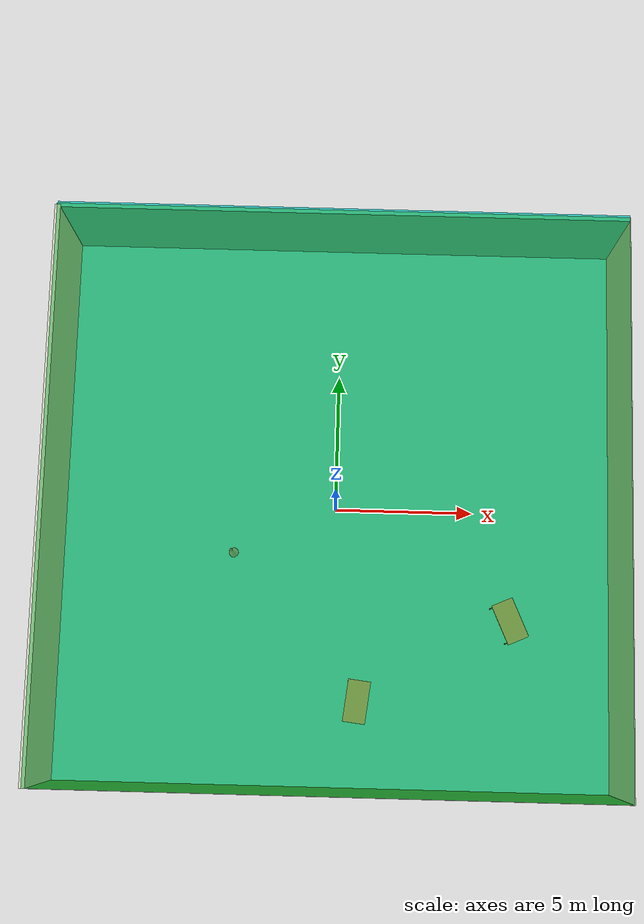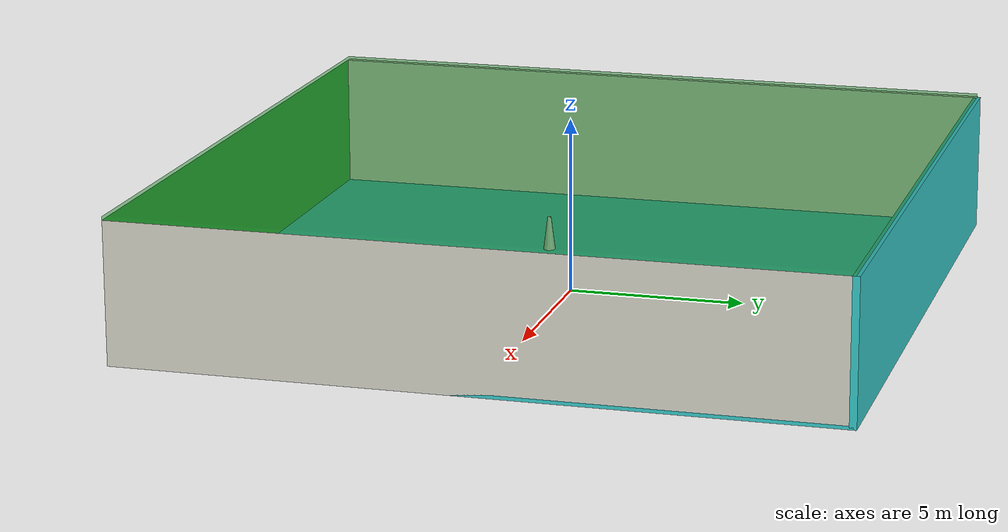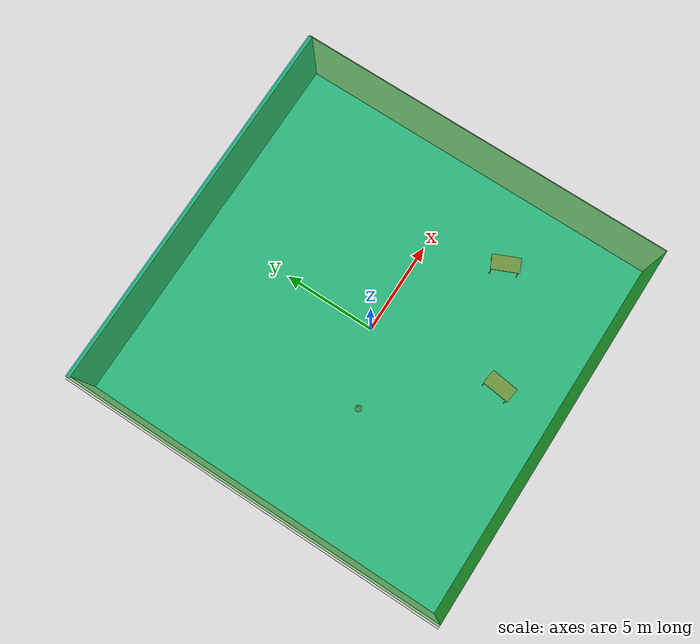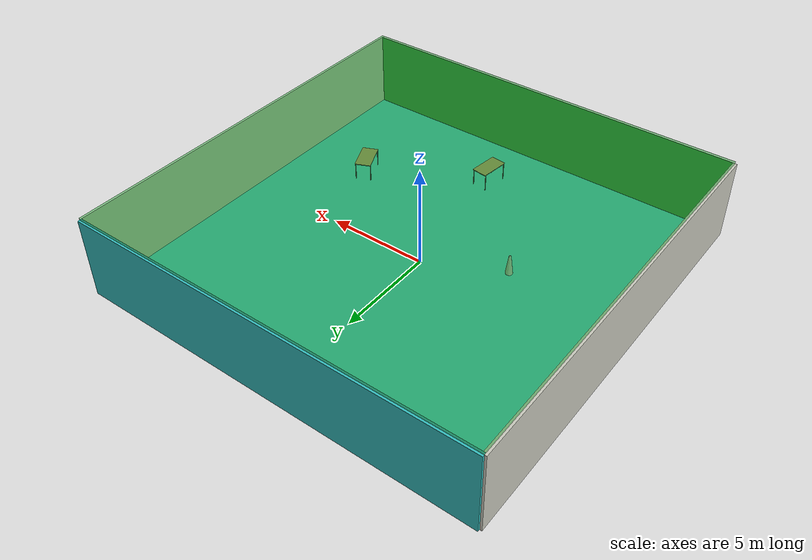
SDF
<sdf version="1.4">
 <world name="default">
  <physics type="ode">
   <max_step_size>0.001</max_step_size>
   <real_time_factor>1</real_time_factor>
   <real_time_update_rate>1000</real_time_update_rate>
   <gravity>0 0 -9.8</gravity>
  </physics>
  <scene><ambient>0.4 0.4 0.4 1</ambient><background>0.7 0.7 0.7 1</background><shadows>1</shadows></scene>
  <model name="Surrounding">
   <static>1</static>
   <link name="Ceiling">
    <collision name="Ceiling_Collision"><geometry><box><size>20 20 0.1</size></box></geometry></collision>
    <visual name="Ceiling_Visual">
     <geometry><box><size>20 20 0.1</size></box></geometry>
     <material>
      <script><uri>file://media/materials/scripts/gazebo.material</uri><name>Gazebo/GreenTransparent</name></script>
     </material>
    </visual>
    <pose>0 0 4.05 0 0 0</pose>
   </link>
   <link name="Wall_South">
    <collision name="Wall_South_Collision">
     <geometry><box><size>20 0 4</size></box></geometry>
     <pose>0 0 2 0 -0 0</pose>
    </collision>
    <visual name="Wall_South_Visual">
     <pose>0 0 2 0 -0 0</pose>
     <geometry><box><size>20 0 4</size></box></geometry>
     <material>
      <script><uri>file://media/materials/scripts/gazebo.material</uri><name>Gazebo/GreenGlow</name></script>
     </material>
    </visual>
    <velocity_decay><linear>0</linear><angular>0</angular></velocity_decay>
    <pose>0 -10 0 0 -0 0</pose>
   </link>
   <link name="Wall_East">
    <collision name="Wall_21_Collision">
     <geometry><box><size>20 0 4</size></box></geometry>
     <pose>0 0 2 0 -0 0</pose>
    </collision>
    <visual name="Wall_21_Visual">
     <pose>0 0 2 0 -0 0</pose>
     <geometry><box><size>20 0 4</size></box></geometry>
     <material>
      <script><uri>file://media/materials/scripts/gazebo.material</uri><name>Gazebo/PaintedWall</name></script>
     </material>
    </visual>
    <velocity_decay><linear>0</linear><angular>0</angular></velocity_decay>
    <pose>10 0 0 0 -0 1.5708</pose>
   </link>
   <link name="Wall_North">
    <collision name="Wall_22_Collision">
     <geometry><box><size>20 0.2 4</size></box></geometry>
     <pose>0 0 2 0 -0 0</pose>
    </collision>
    <visual name="Wall_22_Visual">
     <pose>0 0 2 0 -0 0</pose>
     <geometry><box><size>20 0.2 4</size></box></geometry>
     <material>
      <script>
       <uri>file://media/materials/scripts/gazebo.material</uri>
       <name>Gazebo/TurquoiseGlowOutline</name>
      </script>
     </material>
    </visual>
    <velocity_decay><linear>0</linear><angular>0</angular></velocity_decay>
    <pose>0 10 0 0 -0 0</pose>
   </link>
   <link name="Wall_West">
    <collision name="Wall_23_Collision">
     <geometry><box><size>20 0.2 4</size></box></geometry>
     <pose>0 0 2 0 -0 0</pose>
    </collision>
    <visual name="Wall_23_Visual">
     <pose>0 0 2 0 -0 0</pose>
     <geometry><box><size>20 0.2 4</size></box></geometry>
     <material>
      <script><uri>file://media/materials/scripts/gazebo.material</uri><name>Gazebo/PaintedWall</name></script>
     </material>
    </visual>
    <velocity_decay><linear>0</linear><angular>0</angular></velocity_decay>
    <pose>-10 0 0 0 0 -1.5708</pose>
   </link>
   <link name="Ground_link">
    <collision name="collision">
     <pose>0 0 .05 0 -0 0</pose>
     <geometry><box><size>20 20 0.1</size></box></geometry>
    </collision>
    <visual name="visual">
     <pose>0 0 .05 0 -0 0</pose>
     <geometry><box><size>20 20 0.1</size></box></geometry>
     <material>
      <script>
       <uri>file://media/materials/scripts/gazebo.material</uri>
       <name>Gazebo/TurquoiseGlowOutline</name>
      </script>
     </material>
    </visual>
   </link>
   <static>1</static>
  </model>
  <spherical_coordinates>
   <surface_model>EARTH_WGS84</surface_model>
   <latitude_deg>0</latitude_deg>
   <longitude_deg>0</longitude_deg>
   <elevation>0</elevation>
   <heading_deg>0</heading_deg>
  </spherical_coordinates>
  <light name="lightball_0" type="diffuse">
   <diffuse>0.8 0.8 0.8 1</diffuse>
   <specular>0.2 0.2 0.2 1</specular>
   <attenuation>
    <range>100</range>
    <constant>0.7</constant>
    <linear>0.01</linear>
    <quadratic>0.001</quadratic>
   </attenuation>
   <direction>-0.5 0.1 -0.9</direction>
   <pose>1.50615555132 3.52260470979 1.68412829257 0 0 0</pose>
  </light>
  <light name="lightball_1" type="diffuse">
   <diffuse>0.8 0.8 0.8 1</diffuse>
   <specular>0.2 0.2 0.2 1</specular>
   <attenuation>
    <range>100</range>
    <constant>0.7</constant>
    <linear>0.01</linear>
    <quadratic>0.001</quadratic>
   </attenuation>
   <direction>-0.5 0.1 -0.9</direction>
   <pose>-5.40286778825 -6.25783224132 2.96089623079 0 0 0</pose>
  </light>
  <light name="lightball_2" type="diffuse">
   <diffuse>0.8 0.8 0.8 1</diffuse>
   <specular>0.2 0.2 0.2 1</specular>
   <attenuation>
    <range>100</range>
    <constant>0.7</constant>
    <linear>0.01</linear>
    <quadratic>0.001</quadratic>
   </attenuation>
   <direction>-0.5 0.1 -0.9</direction>
   <pose>-7.20956594724 -4.04091457851 1.3014811948 0 0 0</pose>
  </light>
  <light name="lightball_3" type="diffuse">
   <diffuse>0.8 0.8 0.8 1</diffuse>
   <specular>0.2 0.2 0.2 1</specular>
   <attenuation>
    <range>100</range>
    <constant>0.7</constant>
    <linear>0.01</linear>
    <quadratic>0.001</quadratic>
   </attenuation>
   <direction>-0.5 0.1 -0.9</direction>
   <pose>7.52630793946 0.280256034622 2.37811125279 0 0 0</pose>
  </light>
  <light name="lightball_4" type="diffuse">
   <diffuse>0.8 0.8 0.8 1</diffuse>
   <specular>0.2 0.2 0.2 1</specular>
   <attenuation>
    <range>100</range>
    <constant>0.7</constant>
    <linear>0.01</linear>
    <quadratic>0.001</quadratic>
   </attenuation>
   <direction>-0.5 0.1 -0.9</direction>
   <pose>-3.2865883883 8.02145207805 2.15927832235 0 0 0</pose>
  </light>
  <include>
   <uri>model://construction_cone</uri>
   <pose>-3.69805695676 -1.6654316222 0 0 0 2.54804104195</pose>
  </include>
  <include><uri>model://table</uri><pose>0.912291052807 -6.93695463952 0 0 0 1.44616917162</pose></include>
  <include><uri>model://table</uri><pose>6.31519287715 -3.9642704956 0 0 0 1.98467031536</pose></include>
 </world>
</sdf>

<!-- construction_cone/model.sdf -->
<sdf version="1.5">
  <model name="Construction Cone">
    <link name="link">
      <collision name="collision">
        <geometry>
          <mesh>
            <scale>10 10 10</scale>
            <uri>file://isr-testbed/construction_cone/meshes/construction_cone.dae</uri>
          </mesh>
        </geometry>
      </collision>
      <visual name="visual">
        <geometry>
          <mesh>
            <scale>10 10 10</scale>
            <uri>file://isr-testbed/construction_cone/meshes/construction_cone.dae</uri>
          </mesh>
        </geometry>
      </visual>
    </link>
  </model>
</sdf>

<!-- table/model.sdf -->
<sdf version="1.5">
  <model name="table">
    <static>true</static>
    <link name="link">
      <collision name="surface">
        <pose>0 0 1.0 0 0 0</pose>
        <geometry>
          <box>
            <size>1.5 0.8 0.03</size>
          </box>
        </geometry>
        <surface>
          <friction>
            <ode>
              <mu>0.6</mu>
              <mu2>0.6</mu2>
            </ode>
          </friction>
        </surface>
      </collision>
      <visual name="visual1">
        <pose>0 0 1.0 0 0 0</pose>
        <geometry>
          <box>
            <size>1.5 0.8 0.03</size>
          </box>
        </geometry>
        <material>
          <script>
            <uri>model://media/materials/scripts/gazebo.material</uri>
            <name>Gazebo/Wood</name>
          </script>
        </material>
      </visual>
      <collision name="front_left_leg">
        <pose>0.68 0.38 0.5 0 0 0</pose>
        <geometry>
          <cylinder>
            <radius>0.02</radius>
            <length>1.0</length>
          </cylinder>
        </geometry>
      </collision>
      <visual name="front_left_leg">
        <pose>0.68 0.38 0.5 0 0 0</pose>
        <geometry>
          <cylinder>
            <radius>0.02</radius>
            <length>1.0</length>
          </cylinder>
        </geometry>
        <material>
          <script>
            <uri>model://media/materials/scripts/gazebo.material</uri>
            <name>Gazebo/Grey</name>
          </script>
        </material>
      </visual>
      <collision name="front_right_leg">
        <pose>0.68 -0.38 0.5 0 0 0</pose>
        <geometry>
          <cylinder>
            <radius>0.02</radius>
            <length>1.0</length>
          </cylinder>
        </geometry>
      </collision>
      <visual name="front_right_leg">
        <pose>0.68 -0.38 0.5 0 0 0</pose>
        <geometry>
          <cylinder>
            <radius>0.02</radius>
            <length>1.0</length>
          </cylinder>
        </geometry>
        <material>
          <script>
            <uri>model://media/materials/scripts/gazebo.material</uri>
            <name>Gazebo/Grey</name>
          </script>
        </material>
      </visual>
      <collision name="back_right_leg">
        <pose>-0.68 -0.38 0.5 0 0 0</pose>
        <geometry>
          <cylinder>
            <radius>0.02</radius>
            <length>1.0</length>
          </cylinder>
        </geometry>
      </collision>
      <visual name="back_right_leg">
        <pose>-0.68 -0.38 0.5 0 0 0</pose>
        <geometry>
          <cylinder>
            <radius>0.02</radius>
            <length>1.0</length>
          </cylinder>
        </geometry>
        <material>
          <script>
            <uri>model://media/materials/scripts/gazebo.material</uri>
            <name>Gazebo/Grey</name>
          </script>
        </material>
      </visual>
      <collision name="back_left_leg">
        <pose>-0.68 0.38 0.5 0 0 0</pose>
        <geometry>
          <cylinder>
            <radius>0.02</radius>
            <length>1.0</length>
          </cylinder>
        </geometry>
      </collision>
      <visual name="back_left_leg">
        <pose>-0.68 0.38 0.5 0 0 0</pose>
        <geometry>
          <cylinder>
            <radius>0.02</radius>
            <length>1.0</length>
          </cylinder>
        </geometry>
        <material>
          <script>
            <uri>model://media/materials/scripts/gazebo.material</uri>
            <name>Gazebo/Grey</name>
          </script>
        </material>
      </visual>
    </link>
  </model>
</sdf>
